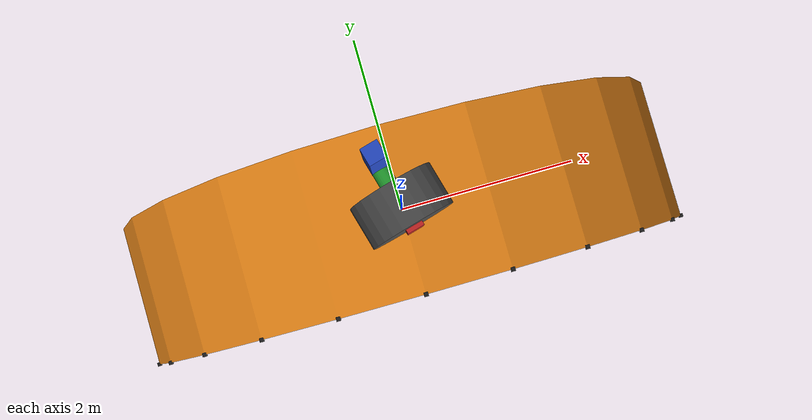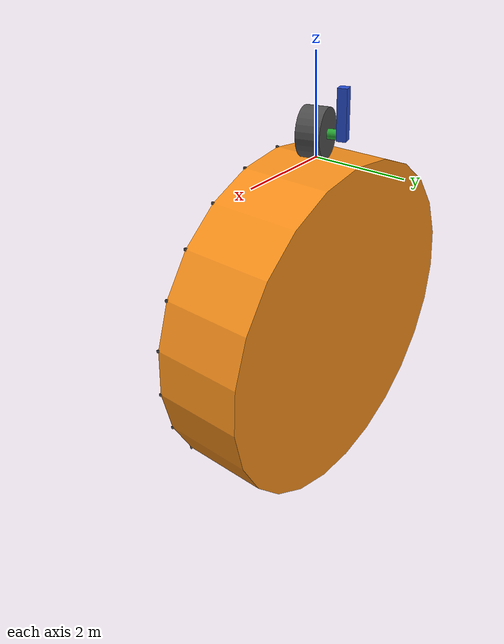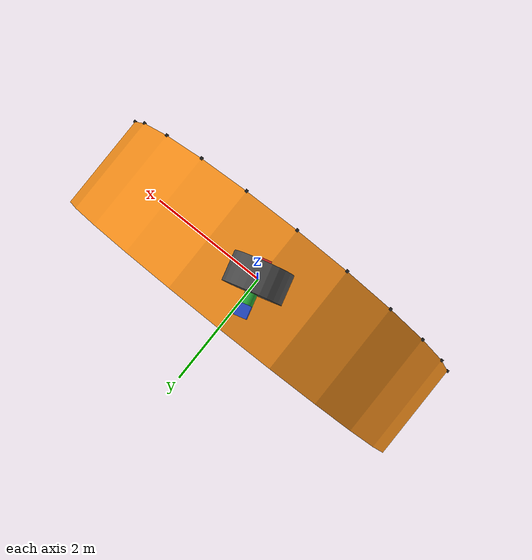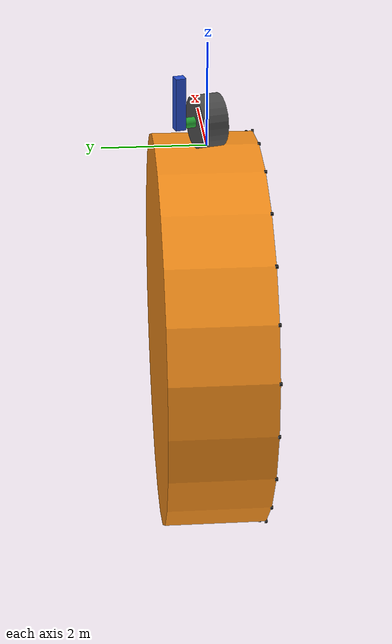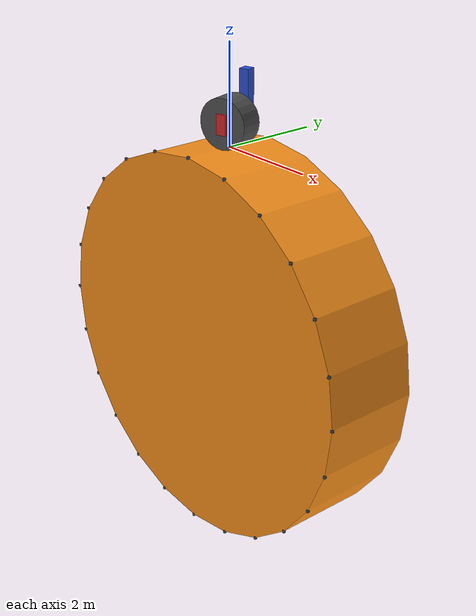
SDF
<?xml version="1.0" ?>
<sdf version="1.5">
  <world name="default">

    <include>
      <uri>model://sun</uri>
    </include>

    <model name="tire">
      <pose>0 0 0.5  0 0 0.261799388</pose>

      <link name="wheel">
        <pose>0 0 0  1.5707963267948966 0 0</pose>
        <inertial>
          <mass>2.5</mass>
          <inertia>
            <ixx>0.20833333333333331</ixx>
            <ixy>0</ixy>
            <ixz>0</ixz>
            <iyy>0.20833333333333331</iyy>
            <iyz>0</iyz>
            <izz>0.3125</izz>
          </inertia>
        </inertial>
        <collision name="collision">
          <geometry>
            <cylinder>
              <radius>0.5</radius>
              <length>0.5</length>
            </cylinder>
          </geometry>
          <surface>
            <contact>
              <ode>
                <max_vel>0.1</max_vel>
                <min_depth>0.005</min_depth>
              </ode>
            </contact>
            <friction>
              <ode>
                <mu>0.9</mu>
                <mu2>0.9</mu2>
              </ode>
            </friction>
          </surface>
        </collision>

        <visual name="visual_indicator">
          <pose>0 0 0.2 0 0 0</pose>
          <geometry>
            <box>
              <size>0.2 0.4 0.2</size>
            </box>
          </geometry>
          <material>
            <script><name>Gazebo/Red</name></script>
          </material>
        </visual>

        <visual name="visual">
          <geometry>
            <cylinder>
              <radius>0.5</radius>
              <length>0.5</length>
            </cylinder>
          </geometry>
          <material>
            <script><name>Gazebo/DarkGrey</name></script>
          </material>
        </visual>
      </link>

      <link name="axel">
        <pose>0 0.35 0 1.57 0 0</pose>

        <inertial>
          <mass>0.5</mass>
          <inertia>
            <ixx>0.0029166</ixx>
            <ixy>0</ixy>
            <ixz>0</ixz>
            <iyy>0.0029166</iyy>
            <iyz>0</iyz>
            <izz>0.0025</izz>
          </inertia>
        </inertial>

        <collision name="collision">
          <geometry>
            <cylinder>
              <radius>0.1</radius>
              <length>0.2</length>
            </cylinder>
          </geometry>
        </collision>

        <visual name="visual">
          <geometry>
            <cylinder>
              <radius>0.1</radius>
              <length>0.2</length>
            </cylinder>
          </geometry>
          <material>
            <script>
              <name>Gazebo/Green</name>
            </script>
          </material>
        </visual>
      </link>

      <link name="upright">
        <pose>0 0.55 0.4 0 0 0</pose>

        <inertial>
          <mass>1.0</mass>
          <inertia>
            <ixx>0.08667</ixx>
            <ixy>0</ixy>
            <ixz>0</ixz>
            <iyy>0.08667</iyy>
            <iyz>0</iyz>
            <izz>0.0066667</izz>
          </inertia>
        </inertial>

        <collision name="collision">
          <geometry>
            <box>
              <size>0.2 0.2 1</size>
            </box>
          </geometry>
        </collision>
        <visual name="visual">
          <geometry>
            <box>
              <size>0.2 0.2 1</size>
            </box>
          </geometry>
          <material>
            <script>
              <name>Gazebo/Blue</name>
            </script>
          </material>
        </visual>
      </link>

      <joint type="revolute" name="axel_wheel">
        <parent>axel</parent>
        <child>wheel</child>
        <axis>
          <xyz>0 0 1</xyz>
        </axis>

        <sensor name="force_torque" type="force_torque">
          <always_on>true</always_on>
          <visualize>true</visualize>
          <update_rate>30</update_rate>
        </sensor>
      </joint>

      <joint type="revolute" name="upright_axel">
        <parent>upright</parent>
        <child>axel</child>
        <axis>
          <xyz>1 0 0</xyz>
          <limit>
            <upper>0.75</upper>
            <lower>-0.75</lower>
          </limit>
        </axis>
      </joint>

      <joint type="revolute" name="world_upright">
        <parent>world</parent>
        <child>upright</child>
        <axis>
          <xyz>0 0 1</xyz>
          <limit>
            <upper>0</upper>
            <lower>0</lower>
          </limit>
        </axis>
      </joint>

      <plugin name="tire_friction" filename="libTireFrictionPlugin.so">
        <link_name>wheel</link_name>
        <collision_name>collision</collision_name>
      </plugin>
    </model>

    <model name="drum">
      <pose>0 0 -4.0  1.5707963267948966 0 0</pose>

      <link name="link">
        <inertial>
          <mass>10</mass>
          <inertia>
            <ixx>43.33333333333333</ixx>
            <ixy>0</ixy>
            <ixz>0</ixz>
            <iyy>43.33333333333333</iyy>
            <iyz>0</iyz>
            <izz>80.0</izz>
          </inertia>
        </inertial>
        <collision name="collision">
          <geometry>
            <cylinder>
              <radius>4.0</radius>
              <length>2.0</length>
            </cylinder>
          </geometry>
          <surface>
            <friction>
              <ode>
                <mu>0.9</mu>
                <mu2>0.9</mu2>
              </ode>
            </friction>
          </surface>
        </collision>

        <visual name="visual">
          <geometry>
            <cylinder>
              <radius>4.0</radius>
              <length>2.0</length>
            </cylinder>
          </geometry>
          <material>
            <script><name>Gazebo/Orange</name></script>
          </material>
        </visual>

        <visual name='block0'>
          <pose>0.0 4.0 1 0 0 0</pose>
          <geometry>
            <box>
              <size>0.05 0.05 0.05</size>
            </box>
          </geometry>
          <material>
            <script><name>Gazebo/Black</name></script>
          </material>
        </visual>

        <visual name='block1'>
          <pose>1.035276180410083 3.8637033051562732 1 0 0 0</pose>
          <geometry>
            <box>
              <size>0.05 0.05 0.05</size>
            </box>
          </geometry>
          <material>
            <script><name>Gazebo/Black</name></script>
          </material>
        </visual>

        <visual name='block2'>
          <pose>1.9999999999999998 3.464101615137755 1 0 0 0</pose>
          <geometry>
            <box>
              <size>0.05 0.05 0.05</size>
            </box>
          </geometry>
          <material>
            <script><name>Gazebo/Black</name></script>
          </material>
        </visual>

        <visual name='block3'>
          <pose>2.82842712474619 2.8284271247461903 1 0 0 0</pose>
          <geometry>
            <box>
              <size>0.05 0.05 0.05</size>
            </box>
          </geometry>
          <material>
            <script><name>Gazebo/Black</name></script>
          </material>
        </visual>

        <visual name='block4'>
          <pose>3.4641016151377544 2.0000000000000004 1 0 0 0</pose>
          <geometry>
            <box>
              <size>0.05 0.05 0.05</size>
            </box>
          </geometry>
          <material>
            <script><name>Gazebo/Black</name></script>
          </material>
        </visual>

        <visual name='block5'>
          <pose>3.863703305156273 1.0352761804100838 1 0 0 0</pose>
          <geometry>
            <box>
              <size>0.05 0.05 0.05</size>
            </box>
          </geometry>
          <material>
            <script><name>Gazebo/Black</name></script>
          </material>
        </visual>

        <visual name='block6'>
          <pose>4.0 2.4492935982947064e-16 1 0 0 0</pose>
          <geometry>
            <box>
              <size>0.05 0.05 0.05</size>
            </box>
          </geometry>
          <material>
            <script><name>Gazebo/Black</name></script>
          </material>
        </visual>

        <visual name='block7'>
          <pose>3.8637033051562732 -1.0352761804100825 1 0 0 0</pose>
          <geometry>
            <box>
              <size>0.05 0.05 0.05</size>
            </box>
          </geometry>
          <material>
            <script><name>Gazebo/Black</name></script>
          </material>
        </visual>

        <visual name='block8'>
          <pose>3.464101615137755 -1.9999999999999991 1 0 0 0</pose>
          <geometry>
            <box>
              <size>0.05 0.05 0.05</size>
            </box>
          </geometry>
          <material>
            <script><name>Gazebo/Black</name></script>
          </material>
        </visual>

        <visual name='block9'>
          <pose>2.8284271247461903 -2.82842712474619 1 0 0 0</pose>
          <geometry>
            <box>
              <size>0.05 0.05 0.05</size>
            </box>
          </geometry>
          <material>
            <script><name>Gazebo/Black</name></script>
          </material>
        </visual>

        <visual name='block10'>
          <pose>2.0000000000000013 -3.464101615137754 1 0 0 0</pose>
          <geometry>
            <box>
              <size>0.05 0.05 0.05</size>
            </box>
          </geometry>
          <material>
            <script><name>Gazebo/Black</name></script>
          </material>
        </visual>

        <visual name='block11'>
          <pose>1.035276180410084 -3.863703305156273 1 0 0 0</pose>
          <geometry>
            <box>
              <size>0.05 0.05 0.05</size>
            </box>
          </geometry>
          <material>
            <script><name>Gazebo/Black</name></script>
          </material>
        </visual>

        <visual name='block12'>
          <pose>4.898587196589413e-16 -4.0 1 0 0 0</pose>
          <geometry>
            <box>
              <size>0.05 0.05 0.05</size>
            </box>
          </geometry>
          <material>
            <script><name>Gazebo/Black</name></script>
          </material>
        </visual>

        <visual name='block13'>
          <pose>-1.0352761804100814 -3.8637033051562737 1 0 0 0</pose>
          <geometry>
            <box>
              <size>0.05 0.05 0.05</size>
            </box>
          </geometry>
          <material>
            <script><name>Gazebo/Black</name></script>
          </material>
        </visual>

        <visual name='block14'>
          <pose>-1.999999999999999 -3.4641016151377553 1 0 0 0</pose>
          <geometry>
            <box>
              <size>0.05 0.05 0.05</size>
            </box>
          </geometry>
          <material>
            <script><name>Gazebo/Black</name></script>
          </material>
        </visual>

        <visual name='block15'>
          <pose>-2.8284271247461885 -2.8284271247461916 1 0 0 0</pose>
          <geometry>
            <box>
              <size>0.05 0.05 0.05</size>
            </box>
          </geometry>
          <material>
            <script><name>Gazebo/Black</name></script>
          </material>
        </visual>

        <visual name='block16'>
          <pose>-3.4641016151377535 -2.0000000000000018 1 0 0 0</pose>
          <geometry>
            <box>
              <size>0.05 0.05 0.05</size>
            </box>
          </geometry>
          <material>
            <script><name>Gazebo/Black</name></script>
          </material>
        </visual>

        <visual name='block17'>
          <pose>-3.8637033051562724 -1.035276180410086 1 0 0 0</pose>
          <geometry>
            <box>
              <size>0.05 0.05 0.05</size>
            </box>
          </geometry>
          <material>
            <script><name>Gazebo/Black</name></script>
          </material>
        </visual>

        <visual name='block18'>
          <pose>-4.0 -7.347880794884119e-16 1 0 0 0</pose>
          <geometry>
            <box>
              <size>0.05 0.05 0.05</size>
            </box>
          </geometry>
          <material>
            <script><name>Gazebo/Black</name></script>
          </material>
        </visual>

        <visual name='block19'>
          <pose>-3.8637033051562737 1.0352761804100812 1 0 0 0</pose>
          <geometry>
            <box>
              <size>0.05 0.05 0.05</size>
            </box>
          </geometry>
          <material>
            <script><name>Gazebo/Black</name></script>
          </material>
        </visual>

        <visual name='block20'>
          <pose>-3.464101615137756 1.9999999999999973 1 0 0 0</pose>
          <geometry>
            <box>
              <size>0.05 0.05 0.05</size>
            </box>
          </geometry>
          <material>
            <script><name>Gazebo/Black</name></script>
          </material>
        </visual>

        <visual name='block21'>
          <pose>-2.8284271247461907 2.8284271247461894 1 0 0 0</pose>
          <geometry>
            <box>
              <size>0.05 0.05 0.05</size>
            </box>
          </geometry>
          <material>
            <script><name>Gazebo/Black</name></script>
          </material>
        </visual>

        <visual name='block22'>
          <pose>-2.0000000000000018 3.4641016151377535 1 0 0 0</pose>
          <geometry>
            <box>
              <size>0.05 0.05 0.05</size>
            </box>
          </geometry>
          <material>
            <script><name>Gazebo/Black</name></script>
          </material>
        </visual>

        <visual name='block23'>
          <pose>-1.0352761804100863 3.8637033051562724 1 0 0 0</pose>
          <geometry>
            <box>
              <size>0.05 0.05 0.05</size>
            </box>
          </geometry>
          <material>
            <script><name>Gazebo/Black</name></script>
          </material>
        </visual>

        <visual name='block24'>
          <pose>-9.797174393178826e-16 4.0 1 0 0 0</pose>
          <geometry>
            <box>
              <size>0.05 0.05 0.05</size>
            </box>
          </geometry>
          <material>
            <script><name>Gazebo/Black</name></script>
          </material>
        </visual>

      </link>

      <joint type="revolute" name="joint">
        <parent>world</parent>
        <child>link</child>
        <axis>
          <xyz>0 0 1</xyz>
        </axis>
      </joint>
    </model>

  </world>
</sdf>
